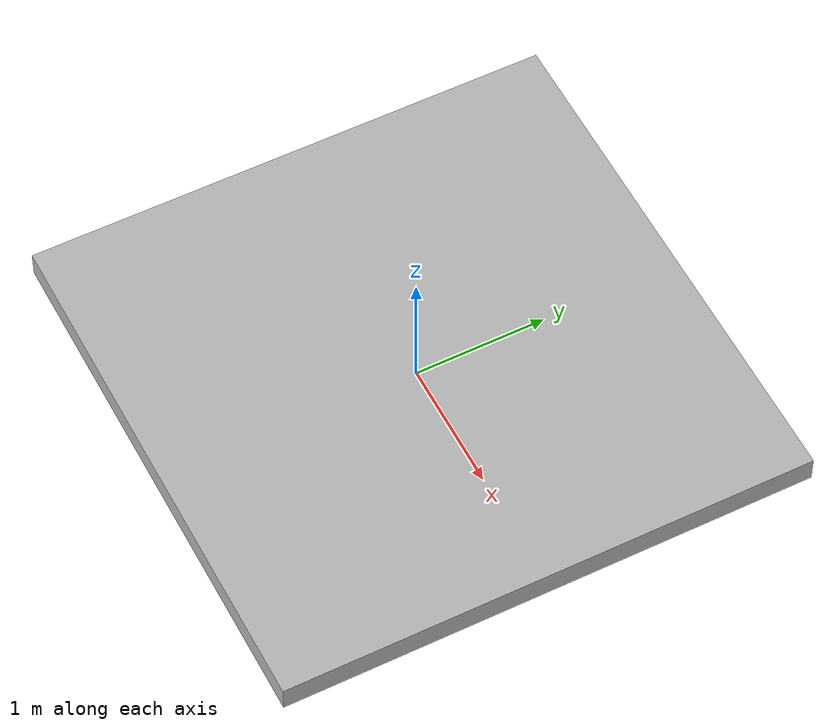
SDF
<?xml version="1.0" ?>
<sdf version="1.5">
  <model name="concrete400x400x20">
    <static>1</static>
    <link name="link">
      <pose>0 0 0.1 0 0 0</pose>

      <visual name="visual">
        <geometry>
          <box>
            <size>4.0 4.0 0.2</size>
          </box>
        </geometry>
      </visual>

    </link>

    <plugin name="concrete" filename="libgazebo_rad_obstacle.so">
      <depth>4.0</depth>
      <width>4.0</width>
      <height>0.2</height>
      <material>concrete</material>
      <density>2.3</density> <!-- g/cm^3 -->
      <mac60kev>2.66E-01</mac60kev> <!-- cm^2/g -->
      <mac600kev>6.236E-02</mac600kev> <!-- cm^2/g -->
    </plugin>

  </model>
</sdf>
